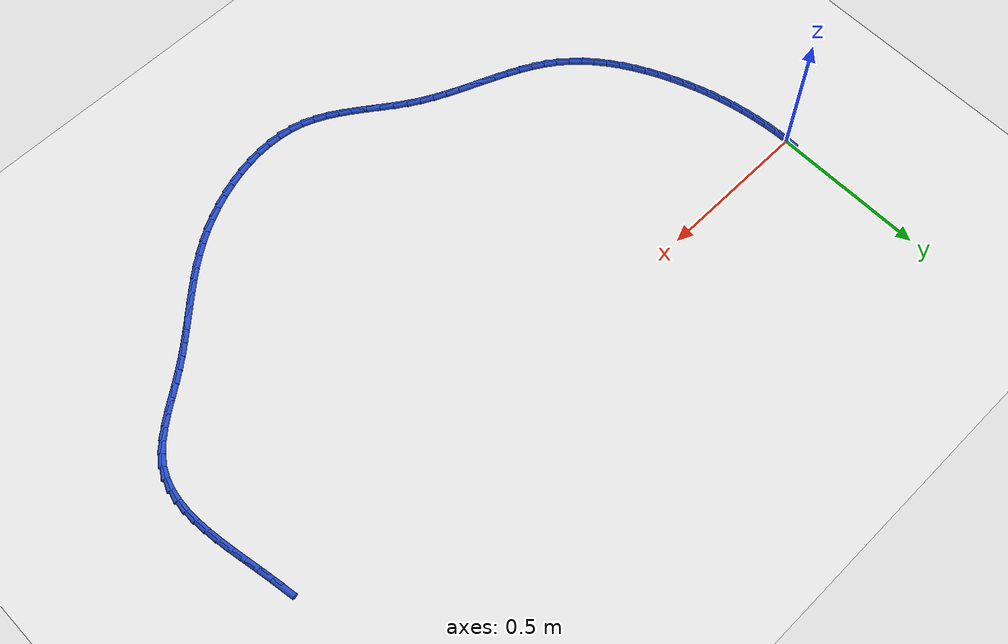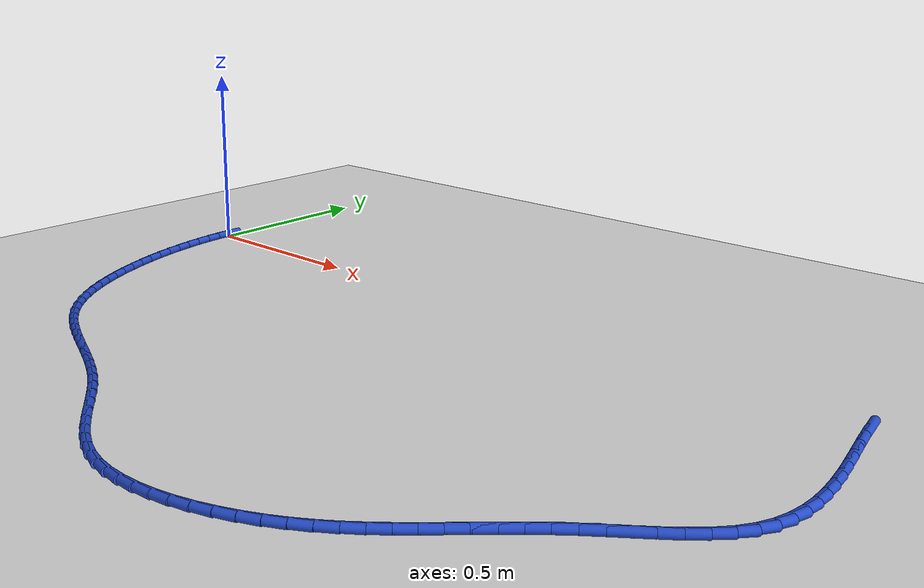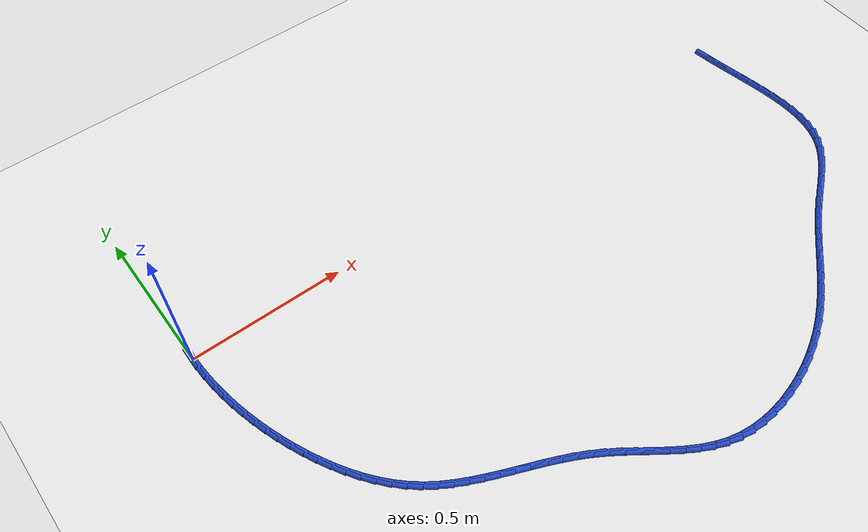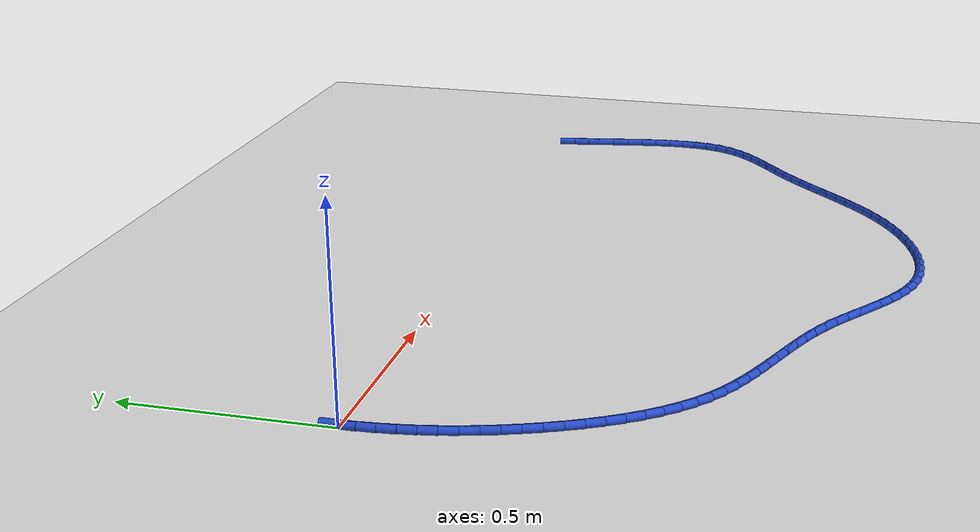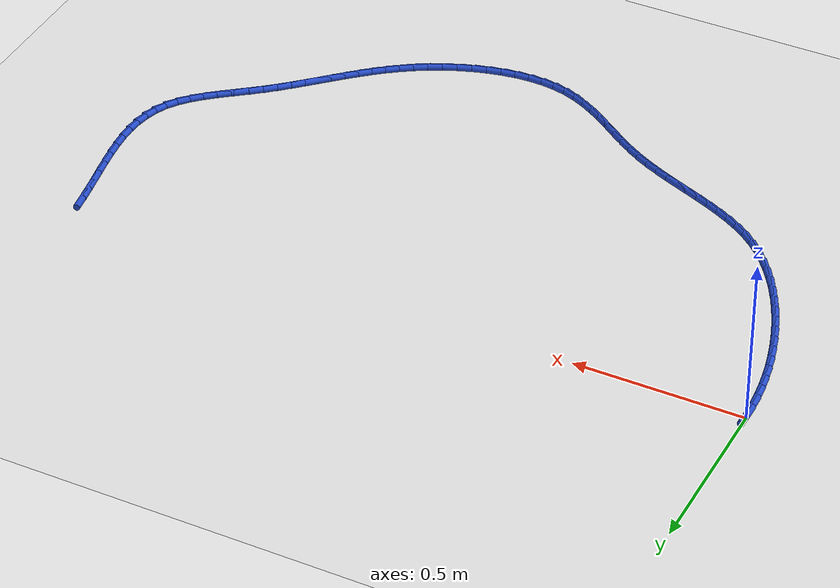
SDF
<sdf version="1.6">
 <world name="default">
  <model name="ground_plane">
   <static>1</static>
   <link name="link">
    <collision name="collision">
     <geometry><plane><normal>0 0 1</normal><size>100 100</size></plane></geometry>
     <surface><friction><ode><mu>100</mu><mu2>50</mu2></ode></friction></surface>
    </collision>
    <visual name="visual">
     <cast_shadows>0</cast_shadows>
     <geometry><plane><normal>0 0 1</normal><size>100 100</size></plane></geometry>
     <material>
      <script><uri>file://media/materials/scripts/gazebo.material</uri><name>Gazebo/WhiteGlow</name></script>
     </material>
    </visual>
   </link>
  </model>
  <model name="line">
   <link name="link_0">
    <pose>8.673617379884035e-19 -9.71445146547012e-17 0.01 0 1.57 1.564009834167707</pose>
    <collision name="collision">
     <geometry><cylinder><radius>0.01</radius><length>0.08</length></cylinder></geometry>
    </collision>
    <visual name="visual">
     <material>
      <script><name>Gazebo/Blue</name><uri>file://media/materials/scripts/gazebo.material</uri></script>
     </material>
     <geometry><cylinder><radius>0.01</radius><length>0.08</length></cylinder></geometry>
    </visual>
   </link>
   <link name="link_80">
    <pose>2.033537973841397 -0.027237869934333914 0.01 0 1.57 -1.408950799010912</pose>
    <collision name="collision">
     <geometry><cylinder><radius>0.01</radius><length>0.08</length></cylinder></geometry>
    </collision>
    <visual name="visual">
     <material>
      <script><name>Gazebo/Blue</name><uri>file://media/materials/scripts/gazebo.material</uri></script>
     </material>
     <geometry><cylinder><radius>0.01</radius><length>0.08</length></cylinder></geometry>
    </visual>
   </link>
   <link name="link_81">
    <pose>2.040979530329874 -0.07281508294021721 0.01 0 1.57 -1.3906604653842178</pose>
    <collision name="collision">
     <geometry><cylinder><radius>0.01</radius><length>0.08</length></cylinder></geometry>
    </collision>
    <visual name="visual">
     <material>
      <script><name>Gazebo/Blue</name><uri>file://media/materials/scripts/gazebo.material</uri></script>
     </material>
     <geometry><cylinder><radius>0.01</radius><length>0.08</length></cylinder></geometry>
    </visual>
   </link>
   <link name="link_82">
    <pose>2.049267936098644 -0.11832829282908089 0.01 0 1.57 -1.3839317653717993</pose>
    <collision name="collision">
     <geometry><cylinder><radius>0.01</radius><length>0.08</length></cylinder></geometry>
    </collision>
    <visual name="visual">
     <material>
      <script><name>Gazebo/Blue</name><uri>file://media/materials/scripts/gazebo.material</uri></script>
     </material>
     <geometry><cylinder><radius>0.01</radius><length>0.08</length></cylinder></geometry>
    </visual>
   </link>
   <link name="link_83">
    <pose>2.057824631771969 -0.16358496277215478 0.01 0 1.57 -1.3887921575831346</pose>
    <collision name="collision">
     <geometry><cylinder><radius>0.01</radius><length>0.08</length></cylinder></geometry>
    </collision>
    <visual name="visual">
     <material>
      <script><name>Gazebo/Blue</name><uri>file://media/materials/scripts/gazebo.material</uri></script>
     </material>
     <geometry><cylinder><radius>0.01</radius><length>0.08</length></cylinder></geometry>
    </visual>
   </link>
   <link name="link_84">
    <pose>2.0660710579741095 -0.2083925559406713 0.01 0 1.57 -1.405722535275792</pose>
    <collision name="collision">
     <geometry><cylinder><radius>0.01</radius><length>0.08</length></cylinder></geometry>
    </collision>
    <visual name="visual">
     <material>
      <script><name>Gazebo/Blue</name><uri>file://media/materials/scripts/gazebo.material</uri></script>
     </material>
     <geometry><cylinder><radius>0.01</radius><length>0.08</length></cylinder></geometry>
    </visual>
   </link>
   <link name="link_85">
    <pose>2.0734286553293257 -0.2525585355058618 0.01 0 1.57 -1.4356917835470362</pose>
    <collision name="collision">
     <geometry><cylinder><radius>0.01</radius><length>0.08</length></cylinder></geometry>
    </collision>
    <visual name="visual">
     <material>
      <script><name>Gazebo/Blue</name><uri>file://media/materials/scripts/gazebo.material</uri></script>
     </material>
     <geometry><cylinder><radius>0.01</radius><length>0.08</length></cylinder></geometry>
    </visual>
   </link>
   <link name="link_86">
    <pose>2.0793188644618796 -0.295890364638958 0.01 0 1.57 -1.480175367481093</pose>
    <collision name="collision">
     <geometry><cylinder><radius>0.01</radius><length>0.08</length></cylinder></geometry>
    </collision>
    <visual name="visual">
     <material>
      <script><name>Gazebo/Blue</name><uri>file://media/materials/scripts/gazebo.material</uri></script>
     </material>
     <geometry><cylinder><radius>0.01</radius><length>0.08</length></cylinder></geometry>
    </visual>
   </link>
   <link name="link_87">
    <pose>2.0831631259960313 -0.33819550651119173 0.01 0 1.57 -1.541117145630698</pose>
    <collision name="collision">
     <geometry><cylinder><radius>0.01</radius><length>0.08</length></cylinder></geometry>
    </collision>
    <visual name="visual">
     <material>
      <script><name>Gazebo/Blue</name><uri>file://media/materials/scripts/gazebo.material</uri></script>
     </material>
     <geometry><cylinder><radius>0.01</radius><length>0.08</length></cylinder></geometry>
    </visual>
   </link>
   <link name="link_88">
    <pose>2.0843828805560425 -0.3792814242937936 0.01 0 1.57 1.5208478888365247</pose>
    <collision name="collision">
     <geometry><cylinder><radius>0.01</radius><length>0.08</length></cylinder></geometry>
    </collision>
    <visual name="visual">
     <material>
      <script><name>Gazebo/Blue</name><uri>file://media/materials/scripts/gazebo.material</uri></script>
     </material>
     <geometry><cylinder><radius>0.01</radius><length>0.08</length></cylinder></geometry>
    </visual>
   </link>
   <link name="link_89">
    <pose>2.082399568766174 -0.41895558115799536 0.01 0 1.57 1.4205076589526227</pose>
    <collision name="collision">
     <geometry><cylinder><radius>0.01</radius><length>0.08</length></cylinder></geometry>
    </collision>
    <visual name="visual">
     <material>
      <script><name>Gazebo/Blue</name><uri>file://media/materials/scripts/gazebo.material</uri></script>
     </material>
     <geometry><cylinder><radius>0.01</radius><length>0.08</length></cylinder></geometry>
    </visual>
   </link>
   <link name="link_90">
    <pose>2.0766346312506867 -0.4570254402750286 0.01 0 1.57 1.2985885902829757</pose>
    <collision name="collision">
     <geometry><cylinder><radius>0.01</radius><length>0.08</length></cylinder></geometry>
    </collision>
    <visual name="visual">
     <material>
      <script><name>Gazebo/Blue</name><uri>file://media/materials/scripts/gazebo.material</uri></script>
     </material>
     <geometry><cylinder><radius>0.01</radius><length>0.08</length></cylinder></geometry>
    </visual>
   </link>
   <link name="link_91">
    <pose>2.066509508633841 -0.49329846481612505 0.01 0 1.57 1.1568012924969873</pose>
    <collision name="collision">
     <geometry><cylinder><radius>0.01</radius><length>0.08</length></cylinder></geometry>
    </collision>
    <visual name="visual">
     <material>
      <script><name>Gazebo/Blue</name><uri>file://media/materials/scripts/gazebo.material</uri></script>
     </material>
     <geometry><cylinder><radius>0.01</radius><length>0.08</length></cylinder></geometry>
    </visual>
   </link>
   <link name="link_92">
    <pose>2.0514456415398983 -0.5275821179525164 0.01 0 1.57 1.00234281631323</pose>
    <collision name="collision">
     <geometry><cylinder><radius>0.01</radius><length>0.08</length></cylinder></geometry>
    </collision>
    <visual name="visual">
     <material>
      <script><name>Gazebo/Blue</name><uri>file://media/materials/scripts/gazebo.material</uri></script>
     </material>
     <geometry><cylinder><radius>0.01</radius><length>0.08</length></cylinder></geometry>
    </visual>
   </link>
   <link name="link_93">
    <pose>2.0309245384908117 -0.5597071350365312 0.01 0 1.57 0.8670301735378677</pose>
    <collision name="collision">
     <geometry><cylinder><radius>0.01</radius><length>0.08</length></cylinder></geometry>
    </collision>
    <visual name="visual">
     <material>
      <script><name>Gazebo/Blue</name><uri>file://media/materials/scripts/gazebo.material</uri></script>
     </material>
     <geometry><cylinder><radius>0.01</radius><length>0.08</length></cylinder></geometry>
    </visual>
   </link>
   <link name="link_94">
    <pose>2.0053357382939656 -0.58985605073523 0.01 0 1.57 0.769328494951824</pose>
    <collision name="collision">
     <geometry><cylinder><radius>0.01</radius><length>0.08</length></cylinder></geometry>
    </collision>
    <visual name="visual">
     <material>
      <script><name>Gazebo/Blue</name><uri>file://media/materials/scripts/gazebo.material</uri></script>
     </material>
     <geometry><cylinder><radius>0.01</radius><length>0.08</length></cylinder></geometry>
    </visual>
   </link>
   <link name="link_95">
    <pose>1.975772537611894 -0.6184840575060004 0.01 0 1.57 0.7046260959482025</pose>
    <collision name="collision">
     <geometry><cylinder><radius>0.01</radius><length>0.08</length></cylinder></geometry>
    </collision>
    <visual name="visual">
     <material>
      <script><name>Gazebo/Blue</name><uri>file://media/materials/scripts/gazebo.material</uri></script>
     </material>
     <geometry><cylinder><radius>0.01</radius><length>0.08</length></cylinder></geometry>
    </visual>
   </link>
   <link name="link_96">
    <pose>1.943346612964454 -0.6460534687374547 0.01 0 1.57 0.6681327440500509</pose>
    <collision name="collision">
     <geometry><cylinder><radius>0.01</radius><length>0.08</length></cylinder></geometry>
    </collision>
    <visual name="visual">
     <material>
      <script><name>Gazebo/Blue</name><uri>file://media/materials/scripts/gazebo.material</uri></script>
     </material>
     <geometry><cylinder><radius>0.01</radius><length>0.08</length></cylinder></geometry>
    </visual>
   </link>
   <link name="link_97">
    <pose>1.9091696408715064 -0.6730265978182043 0.01 0 1.57 0.6567298141602755</pose>
    <collision name="collision">
     <geometry><cylinder><radius>0.01</radius><length>0.08</length></cylinder></geometry>
    </collision>
    <visual name="visual">
     <material>
      <script><name>Gazebo/Blue</name><uri>file://media/materials/scripts/gazebo.material</uri></script>
     </material>
     <geometry><cylinder><radius>0.01</radius><length>0.08</length></cylinder></geometry>
    </visual>
   </link>
   <link name="link_98">
    <pose>1.8743532978529092 -0.6998657581368608 0.01 0 1.57 0.6692535553948593</pose>
    <collision name="collision">
     <geometry><cylinder><radius>0.01</radius><length>0.08</length></cylinder></geometry>
    </collision>
    <visual name="visual">
     <material>
      <script><name>Gazebo/Blue</name><uri>file://media/materials/scripts/gazebo.material</uri></script>
     </material>
     <geometry><cylinder><radius>0.01</radius><length>0.08</length></cylinder></geometry>
    </visual>
   </link>
   <link name="link_99">
    <pose>1.8400092604285208 -0.7270332630820366 0.01 0 1.57 0.7017324231551274</pose>
    <collision name="collision">
     <geometry><cylinder><radius>0.01</radius><length>0.08</length></cylinder></geometry>
    </collision>
    <visual name="visual">
     <material>
      <script><name>Gazebo/Blue</name><uri>file://media/materials/scripts/gazebo.material</uri></script>
     </material>
     <geometry><cylinder><radius>0.01</radius><length>0.08</length></cylinder></geometry>
    </visual>
   </link>
   <link name="link_100">
    <pose>1.807046163748196 -0.7548954590430957 0.01 0 1.57 0.7325263499050095</pose>
    <collision name="collision">
     <geometry><cylinder><radius>0.01</radius><length>0.08</length></cylinder></geometry>
    </collision>
    <visual name="visual">
     <material>
      <script><name>Gazebo/Blue</name><uri>file://media/materials/scripts/gazebo.material</uri></script>
     </material>
     <geometry><cylinder><radius>0.01</radius><length>0.08</length></cylinder></geometry>
    </visual>
   </link>
   <link name="link_101">
    <pose>1.7754010902827617 -0.7833594904486628 0.01 0 1.57 0.7544180452964225</pose>
    <collision name="collision">
     <geometry><cylinder><radius>0.01</radius><length>0.08</length></cylinder></geometry>
    </collision>
    <visual name="visual">
     <material>
      <script><name>Gazebo/Blue</name><uri>file://media/materials/scripts/gazebo.material</uri></script>
     </material>
     <geometry><cylinder><radius>0.01</radius><length>0.08</length></cylinder></geometry>
    </visual>
   </link>
   <link name="link_102">
    <pose>1.7447208644646846 -0.812195311986429 0.01 0 1.57 0.7669221166654493</pose>
    <collision name="collision">
     <geometry><cylinder><radius>0.01</radius><length>0.08</length></cylinder></geometry>
    </collision>
    <visual name="visual">
     <material>
      <script><name>Gazebo/Blue</name><uri>file://media/materials/scripts/gazebo.material</uri></script>
     </material>
     <geometry><cylinder><radius>0.01</radius><length>0.08</length></cylinder></geometry>
    </visual>
   </link>
   <link name="link_103">
    <pose>1.7146522590166073 -0.8411728539035693 0.01 0 1.57 0.769709005347059</pose>
    <collision name="collision">
     <geometry><cylinder><radius>0.01</radius><length>0.08</length></cylinder></geometry>
    </collision>
    <visual name="visual">
     <material>
      <script><name>Gazebo/Blue</name><uri>file://media/materials/scripts/gazebo.material</uri></script>
     </material>
     <geometry><cylinder><radius>0.01</radius><length>0.08</length></cylinder></geometry>
    </visual>
   </link>
   <link name="link_104">
    <pose>1.684842046661175 -0.8700620464472579 0.01 0 1.57 0.7625846032331552</pose>
    <collision name="collision">
     <geometry><cylinder><radius>0.01</radius><length>0.08</length></cylinder></geometry>
    </collision>
    <visual name="visual">
     <material>
      <script><name>Gazebo/Blue</name><uri>file://media/materials/scripts/gazebo.material</uri></script>
     </material>
     <geometry><cylinder><radius>0.01</radius><length>0.08</length></cylinder></geometry>
    </visual>
   </link>
   <link name="link_105">
    <pose>1.6549370001210322 -0.8986328198646693 0.01 0 1.57 0.7454911769114966</pose>
    <collision name="collision">
     <geometry><cylinder><radius>0.01</radius><length>0.08</length></cylinder></geometry>
    </collision>
    <visual name="visual">
     <material>
      <script><name>Gazebo/Blue</name><uri>file://media/materials/scripts/gazebo.material</uri></script>
     </material>
     <geometry><cylinder><radius>0.01</radius><length>0.08</length></cylinder></geometry>
    </visual>
   </link>
   <link name="link_106">
    <pose>1.6245838921188211 -0.9266551044029778 0.01 0 1.57 0.7185323009290064</pose>
    <collision name="collision">
     <geometry><cylinder><radius>0.01</radius><length>0.08</length></cylinder></geometry>
    </collision>
    <visual name="visual">
     <material>
      <script><name>Gazebo/Blue</name><uri>file://media/materials/scripts/gazebo.material</uri></script>
     </material>
     <geometry><cylinder><radius>0.01</radius><length>0.08</length></cylinder></geometry>
    </visual>
   </link>
   <link name="link_107">
    <pose>1.5934294953771886 -0.9538988303093571 0.01 0 1.57 0.6820201611215025</pose>
    <collision name="collision">
     <geometry><cylinder><radius>0.01</radius><length>0.08</length></cylinder></geometry>
    </collision>
    <visual name="visual">
     <material>
      <script><name>Gazebo/Blue</name><uri>file://media/materials/scripts/gazebo.material</uri></script>
     </material>
     <geometry><cylinder><radius>0.01</radius><length>0.08</length></cylinder></geometry>
    </visual>
   </link>
   <link name="link_108">
    <pose>1.5611205826187764 -0.9801339278309811 0.01 0 1.57 0.6365365123877902</pose>
    <collision name="collision">
     <geometry><cylinder><radius>0.01</radius><length>0.08</length></cylinder></geometry>
    </collision>
    <visual name="visual">
     <material>
      <script><name>Gazebo/Blue</name><uri>file://media/materials/scripts/gazebo.material</uri></script>
     </material>
     <geometry><cylinder><radius>0.01</radius><length>0.08</length></cylinder></geometry>
    </visual>
   </link>
   <link name="link_109">
    <pose>1.5273039265662303 -1.0051303272150252 0.01 0 1.57 0.583013657812503</pose>
    <collision name="collision">
     <geometry><cylinder><radius>0.01</radius><length>0.08</length></cylinder></geometry>
    </collision>
    <visual name="visual">
     <material>
      <script><name>Gazebo/Blue</name><uri>file://media/materials/scripts/gazebo.material</uri></script>
     </material>
     <geometry><cylinder><radius>0.01</radius><length>0.08</length></cylinder></geometry>
    </visual>
   </link>
   <link name="link_110">
    <pose>1.4916282509925067 -1.0286578730292228 0.01 0 1.57 0.5250424568724794</pose>
    <collision name="collision">
     <geometry><cylinder><radius>0.01</radius><length>0.08</length></cylinder></geometry>
    </collision>
    <visual name="visual">
     <material>
      <script><name>Gazebo/Blue</name><uri>file://media/materials/scripts/gazebo.material</uri></script>
     </material>
     <geometry><cylinder><radius>0.01</radius><length>0.08</length></cylinder></geometry>
    </visual>
   </link>
   <link name="link_111">
    <pose>1.453962554514514 -1.0504767365770906 0.01 0 1.57 0.46706284884466287</pose>
    <collision name="collision">
     <geometry><cylinder><radius>0.01</radius><length>0.08</length></cylinder></geometry>
    </collision>
    <visual name="visual">
     <material>
      <script><name>Gazebo/Blue</name><uri>file://media/materials/scripts/gazebo.material</uri></script>
     </material>
     <geometry><cylinder><radius>0.01</radius><length>0.08</length></cylinder></geometry>
    </visual>
   </link>
   <link name="link_112">
    <pose>1.4145953958907684 -1.0703286643795706 0.01 0 1.57 0.4083643075210973</pose>
    <collision name="collision">
     <geometry><cylinder><radius>0.01</radius><length>0.08</length></cylinder></geometry>
    </collision>
    <visual name="visual">
     <material>
      <script><name>Gazebo/Blue</name><uri>file://media/materials/scripts/gazebo.material</uri></script>
     </material>
     <geometry><cylinder><radius>0.01</radius><length>0.08</length></cylinder></geometry>
    </visual>
   </link>
   <link name="link_113">
    <pose>1.3738624073746093 -1.087953335747639 0.01 0 1.57 0.3477233747365252</pose>
    <collision name="collision">
     <geometry><cylinder><radius>0.01</radius><length>0.08</length></cylinder></geometry>
    </collision>
    <visual name="visual">
     <material>
      <script><name>Gazebo/Blue</name><uri>file://media/materials/scripts/gazebo.material</uri></script>
     </material>
     <geometry><cylinder><radius>0.01</radius><length>0.08</length></cylinder></geometry>
    </visual>
   </link>
   <link name="link_114">
    <pose>1.332099221219375 -1.103090429992271 0.01 0 1.57 0.2839175172753378</pose>
    <collision name="collision">
     <geometry><cylinder><radius>0.01</radius><length>0.08</length></cylinder></geometry>
    </collision>
    <visual name="visual">
     <material>
      <script><name>Gazebo/Blue</name><uri>file://media/materials/scripts/gazebo.material</uri></script>
     </material>
     <geometry><cylinder><radius>0.01</radius><length>0.08</length></cylinder></geometry>
    </visual>
   </link>
   <link name="link_115">
    <pose>1.289641469678404 -1.1154796264244422 0.01 0 1.57 0.21568817803843005</pose>
    <collision name="collision">
     <geometry><cylinder><radius>0.01</radius><length>0.08</length></cylinder></geometry>
    </collision>
    <visual name="visual">
     <material>
      <script><name>Gazebo/Blue</name><uri>file://media/materials/scripts/gazebo.material</uri></script>
     </material>
     <geometry><cylinder><radius>0.01</radius><length>0.08</length></cylinder></geometry>
    </visual>
   </link>
   <link name="link_116">
    <pose>1.2468247850050347 -1.1248606043551284 0.01 0 1.57 0.14172412749403454</pose>
    <collision name="collision">
     <geometry><cylinder><radius>0.01</radius><length>0.08</length></cylinder></geometry>
    </collision>
    <visual name="visual">
     <material>
      <script><name>Gazebo/Blue</name><uri>file://media/materials/scripts/gazebo.material</uri></script>
     </material>
     <geometry><cylinder><radius>0.01</radius><length>0.08</length></cylinder></geometry>
    </visual>
   </link>
   <link name="link_117">
    <pose>1.2039847994526074 -1.1309730430953049 0.01 0 1.57 0.060675990362475826</pose>
    <collision name="collision">
     <geometry><cylinder><radius>0.01</radius><length>0.08</length></cylinder></geometry>
    </collision>
    <visual name="visual">
     <material>
      <script><name>Gazebo/Blue</name><uri>file://media/materials/scripts/gazebo.material</uri></script>
     </material>
     <geometry><cylinder><radius>0.01</radius><length>0.08</length></cylinder></geometry>
    </visual>
   </link>
   <link name="link_118">
    <pose>1.1614571452744593 -1.1335566219559463 0.01 0 1.57 -0.028779315881941932</pose>
    <collision name="collision">
     <geometry><cylinder><radius>0.01</radius><length>0.08</length></cylinder></geometry>
    </collision>
    <visual name="visual">
     <material>
      <script><name>Gazebo/Blue</name><uri>file://media/materials/scripts/gazebo.material</uri></script>
     </material>
     <geometry><cylinder><radius>0.01</radius><length>0.08</length></cylinder></geometry>
    </visual>
   </link>
   <link name="link_119">
    <pose>1.1195774547239299 -1.1323510202480291 0.01 0 1.57 -0.1277985636351071</pose>
    <collision name="collision">
     <geometry><cylinder><radius>0.01</radius><length>0.08</length></cylinder></geometry>
    </collision>
    <visual name="visual">
     <material>
      <script><name>Gazebo/Blue</name><uri>file://media/materials/scripts/gazebo.material</uri></script>
     </material>
     <geometry><cylinder><radius>0.01</radius><length>0.08</length></cylinder></geometry>
    </visual>
   </link>
   <link name="link_120">
    <pose>1.0786813600543572 -1.1270959172825283 0.01 0 1.57 -0.23713258522334393</pose>
    <collision name="collision">
     <geometry><cylinder><radius>0.01</radius><length>0.08</length></cylinder></geometry>
    </collision>
    <visual name="visual">
     <material>
      <script><name>Gazebo/Blue</name><uri>file://media/materials/scripts/gazebo.material</uri></script>
     </material>
     <geometry><cylinder><radius>0.01</radius><length>0.08</length></cylinder></geometry>
    </visual>
   </link>
   <link name="link_121">
    <pose>1.0391044935190799 -1.1175309923704193 0.01 0 1.57 -0.35228153935765794</pose>
    <collision name="collision">
     <geometry><cylinder><radius>0.01</radius><length>0.08</length></cylinder></geometry>
    </collision>
    <visual name="visual">
     <material>
      <script><name>Gazebo/Blue</name><uri>file://media/materials/scripts/gazebo.material</uri></script>
     </material>
     <geometry><cylinder><radius>0.01</radius><length>0.08</length></cylinder></geometry>
    </visual>
   </link>
   <link name="link_122">
    <pose>1.0010824939307736 -1.1035534893908558 0.01 0 1.57 -0.4517857232652697</pose>
    <collision name="collision">
     <geometry><cylinder><radius>0.01</radius><length>0.08</length></cylinder></geometry>
    </collision>
    <visual name="visual">
     <material>
      <script><name>Gazebo/Blue</name><uri>file://media/materials/scripts/gazebo.material</uri></script>
     </material>
     <geometry><cylinder><radius>0.01</radius><length>0.08</length></cylinder></geometry>
    </visual>
   </link>
   <link name="link_123">
    <pose>0.9644089033947068 -1.0857572856854758 0.01 0 1.57 -0.5287130038010821</pose>
    <collision name="collision">
     <geometry><cylinder><radius>0.01</radius><length>0.08</length></cylinder></geometry>
    </collision>
    <visual name="visual">
     <material>
      <script><name>Gazebo/Blue</name><uri>file://media/materials/scripts/gazebo.material</uri></script>
     </material>
     <geometry><cylinder><radius>0.01</radius><length>0.08</length></cylinder></geometry>
    </visual>
   </link>
   <link name="link_124">
    <pose>0.9287551231968904 -1.0649287218746608 0.01 0 1.57 -0.5833586391537093</pose>
    <collision name="collision">
     <geometry><cylinder><radius>0.01</radius><length>0.08</length></cylinder></geometry>
    </collision>
    <visual name="visual">
     <material>
      <script><name>Gazebo/Blue</name><uri>file://media/materials/scripts/gazebo.material</uri></script>
     </material>
     <geometry><cylinder><radius>0.01</radius><length>0.08</length></cylinder></geometry>
    </visual>
   </link>
   <link name="link_125">
    <pose>0.8937925505151001 -1.0418541450523433 0.01 0 1.57 -0.6167958385666008</pose>
    <collision name="collision">
     <geometry><cylinder><radius>0.01</radius><length>0.08</length></cylinder></geometry>
    </collision>
    <visual name="visual">
     <material>
      <script><name>Gazebo/Blue</name><uri>file://media/materials/scripts/gazebo.material</uri></script>
     </material>
     <geometry><cylinder><radius>0.01</radius><length>0.08</length></cylinder></geometry>
    </visual>
   </link>
   <link name="link_126">
    <pose>0.8591925825271096 -1.0173199023124542 0.01 0 1.57 -0.6300945607982837</pose>
    <collision name="collision">
     <geometry><cylinder><radius>0.01</radius><length>0.08</length></cylinder></geometry>
    </collision>
    <visual name="visual">
     <material>
      <script><name>Gazebo/Blue</name><uri>file://media/materials/scripts/gazebo.material</uri></script>
     </material>
     <geometry><cylinder><radius>0.01</radius><length>0.08</length></cylinder></geometry>
    </visual>
   </link>
   <link name="link_127">
    <pose>0.8246266164106962 -0.9921123407489264 0.01 0 1.57 -0.623927169237945</pose>
    <collision name="collision">
     <geometry><cylinder><radius>0.01</radius><length>0.08</length></cylinder></geometry>
    </collision>
    <visual name="visual">
     <material>
      <script><name>Gazebo/Blue</name><uri>file://media/materials/scripts/gazebo.material</uri></script>
     </material>
     <geometry><cylinder><radius>0.01</radius><length>0.08</length></cylinder></geometry>
    </visual>
   </link>
   <link name="link_128">
    <pose>0.7897660493436344 -0.9670178074556915 0.01 0 1.57 -0.5984511711953533</pose>
    <collision name="collision">
     <geometry><cylinder><radius>0.01</radius><length>0.08</length></cylinder></geometry>
    </collision>
    <visual name="visual">
     <material>
      <script><name>Gazebo/Blue</name><uri>file://media/materials/scripts/gazebo.material</uri></script>
     </material>
     <geometry><cylinder><radius>0.01</radius><length>0.08</length></cylinder></geometry>
    </visual>
   </link>
   <link name="link_129">
    <pose>0.7542822785036987 -0.9428226495266808 0.01 0 1.57 -0.5534995325490872</pose>
    <collision name="collision">
     <geometry><cylinder><radius>0.01</radius><length>0.08</length></cylinder></geometry>
    </collision>
    <visual name="visual">
     <material>
      <script><name>Gazebo/Blue</name><uri>file://media/materials/scripts/gazebo.material</uri></script>
     </material>
     <geometry><cylinder><radius>0.01</radius><length>0.08</length></cylinder></geometry>
    </visual>
   </link>
   <link name="link_130">
    <pose>0.7178486741466868 -0.920309211034003 0.01 0 1.57 -0.49915868295905946</pose>
    <collision name="collision">
     <geometry><cylinder><radius>0.01</radius><length>0.08</length></cylinder></geometry>
    </collision>
    <visual name="visual">
     <material>
      <script><name>Gazebo/Blue</name><uri>file://media/materials/scripts/gazebo.material</uri></script>
     </material>
     <geometry><cylinder><radius>0.01</radius><length>0.08</length></cylinder></geometry>
    </visual>
   </link>
   <link name="link_131">
    <pose>0.6803369541812593 -0.899857424196729 0.01 0 1.57 -0.4547367164720746</pose>
    <collision name="collision">
     <geometry><cylinder><radius>0.01</radius><length>0.08</length></cylinder></geometry>
    </collision>
    <visual name="visual">
     <material>
      <script><name>Gazebo/Blue</name><uri>file://media/materials/scripts/gazebo.material</uri></script>
     </material>
     <geometry><cylinder><radius>0.01</radius><length>0.08</length></cylinder></geometry>
    </visual>
   </link>
   <link name="link_132">
    <pose>0.6419840427902613 -0.8811062831314989 0.01 0 1.57 -0.4223875069996889</pose>
    <collision name="collision">
     <geometry><cylinder><radius>0.01</radius><length>0.08</length></cylinder></geometry>
    </collision>
    <visual name="visual">
     <material>
      <script><name>Gazebo/Blue</name><uri>file://media/materials/scripts/gazebo.material</uri></script>
     </material>
     <geometry><cylinder><radius>0.01</radius><length>0.08</length></cylinder></geometry>
    </visual>
   </link>
   <link name="link_133">
    <pose>0.6030661594339686 -0.863615058876918 0.01 0 1.57 -0.40206973398045903</pose>
    <collision name="collision">
     <geometry><cylinder><radius>0.01</radius><length>0.08</length></cylinder></geometry>
    </collision>
    <visual name="visual">
     <material>
      <script><name>Gazebo/Blue</name><uri>file://media/materials/scripts/gazebo.material</uri></script>
     </material>
     <geometry><cylinder><radius>0.01</radius><length>0.08</length></cylinder></geometry>
    </visual>
   </link>
   <link name="link_134">
    <pose>0.563859523572657 -0.8469430224715919 0.01 0 1.57 -0.3937534158794066</pose>
    <collision name="collision">
     <geometry><cylinder><radius>0.01</radius><length>0.08</length></cylinder></geometry>
    </collision>
    <visual name="visual">
     <material>
      <script><name>Gazebo/Blue</name><uri>file://media/materials/scripts/gazebo.material</uri></script>
     </material>
     <geometry><cylinder><radius>0.01</radius><length>0.08</length></cylinder></geometry>
    </visual>
   </link>
   <link name="link_135">
    <pose>0.5246403546666031 -0.8306494449541268 0.01 0 1.57 -0.3975089503368088</pose>
    <collision name="collision">
     <geometry><cylinder><radius>0.01</radius><length>0.08</length></cylinder></geometry>
    </collision>
    <visual name="visual">
     <material>
      <script><name>Gazebo/Blue</name><uri>file://media/materials/scripts/gazebo.material</uri></script>
     </material>
     <geometry><cylinder><radius>0.01</radius><length>0.08</length></cylinder></geometry>
    </visual>
   </link>
   <link name="link_136">
    <pose>0.48568487217608186 -0.8142935973631275 0.01 0 1.57 -0.4135467231527009</pose>
    <collision name="collision">
     <geometry><cylinder><radius>0.01</radius><length>0.08</length></cylinder></geometry>
    </collision>
    <visual name="visual">
     <material>
      <script><name>Gazebo/Blue</name><uri>file://media/materials/scripts/gazebo.material</uri></script>
     </material>
     <geometry><cylinder><radius>0.01</radius><length>0.08</length></cylinder></geometry>
    </visual>
   </link>
   <link name="link_137">
    <pose>0.44726929556137146 -0.7974347507372008 0.01 0 1.57 -0.44220712767174636</pose>
    <collision name="collision">
     <geometry><cylinder><radius>0.01</radius><length>0.08</length></cylinder></geometry>
    </collision>
    <visual name="visual">
     <material>
      <script><name>Gazebo/Blue</name><uri>file://media/materials/scripts/gazebo.material</uri></script>
     </material>
     <geometry><cylinder><radius>0.01</radius><length>0.08</length></cylinder></geometry>
    </visual>
   </link>
   <link name="link_138">
    <pose>0.40966984428274705 -0.779632176114952 0.01 0 1.57 -0.4838935567903404</pose>
    <collision name="collision">
     <geometry><cylinder><radius>0.01</radius><length>0.08</length></cylinder></geometry>
    </collision>
    <visual name="visual">
     <material>
      <script><name>Gazebo/Blue</name><uri>file://media/materials/scripts/gazebo.material</uri></script>
     </material>
     <geometry><cylinder><radius>0.01</radius><length>0.08</length></cylinder></geometry>
    </visual>
   </link>
   <link name="link_139">
    <pose>0.3731627378004848 -0.7604451445349867 0.01 0 1.57 -0.5389343921319946</pose>
    <collision name="collision">
     <geometry><cylinder><radius>0.01</radius><length>0.08</length></cylinder></geometry>
    </collision>
    <visual name="visual">
     <material>
      <script><name>Gazebo/Blue</name><uri>file://media/materials/scripts/gazebo.material</uri></script>
     </material>
     <geometry><cylinder><radius>0.01</radius><length>0.08</length></cylinder></geometry>
    </visual>
   </link>
   <link name="link_140">
    <pose>0.3380241955748611 -0.7394329270359107 0.01 0 1.57 -0.6073617716766558</pose>
    <collision name="collision">
     <geometry><cylinder><radius>0.01</radius><length>0.08</length></cylinder></geometry>
    </collision>
    <visual name="visual">
     <material>
      <script><name>Gazebo/Blue</name><uri>file://media/materials/scripts/gazebo.material</uri></script>
     </material>
     <geometry><cylinder><radius>0.01</radius><length>0.08</length></cylinder></geometry>
    </visual>
   </link>
   <link name="link_141">
    <pose>0.30453043706615124 -0.7161547946563293 0.01 0 1.57 -0.6877973295561265</pose>
    <collision name="collision">
     <geometry><cylinder><radius>0.01</radius><length>0.08</length></cylinder></geometry>
    </collision>
    <visual name="visual">
     <material>
      <script><name>Gazebo/Blue</name><uri>file://media/materials/scripts/gazebo.material</uri></script>
     </material>
     <geometry><cylinder><radius>0.01</radius><length>0.08</length></cylinder></geometry>
    </visual>
   </link>
   <link name="link_142">
    <pose>0.27294324756621025 -0.6902015046690144 0.01 0 1.57 -0.7686990962216781</pose>
    <collision name="collision">
     <geometry><cylinder><radius>0.01</radius><length>0.08</length></cylinder></geometry>
    </collision>
    <visual name="visual">
     <material>
      <script><name>Gazebo/Blue</name><uri>file://media/materials/scripts/gazebo.material</uri></script>
     </material>
     <geometry><cylinder><radius>0.01</radius><length>0.08</length></cylinder></geometry>
    </visual>
   </link>
   <link name="link_143">
    <pose>0.2433385026002771 -0.6615693519761932 0.01 0 1.57 -0.8425242414072035</pose>
    <collision name="collision">
     <geometry><cylinder><radius>0.01</radius><length>0.08</length></cylinder></geometry>
    </collision>
    <visual name="visual">
     <material>
      <script><name>Gazebo/Blue</name><uri>file://media/materials/scripts/gazebo.material</uri></script>
     </material>
     <geometry><cylinder><radius>0.01</radius><length>0.08</length></cylinder></geometry>
    </visual>
   </link>
   <link name="link_144">
    <pose>0.21566293461574212 -0.6305363400670347 0.01 0 1.57 -0.9094000931263464</pose>
    <collision name="collision">
     <geometry><cylinder><radius>0.01</radius><length>0.08</length></cylinder></geometry>
    </collision>
    <visual name="visual">
     <material>
      <script><name>Gazebo/Blue</name><uri>file://media/materials/scripts/gazebo.material</uri></script>
     </material>
     <geometry><cylinder><radius>0.01</radius><length>0.08</length></cylinder></geometry>
    </visual>
   </link>
   <link name="link_145">
    <pose>0.18986066979156402 -0.5973861576614571 0.01 0 1.57 -0.9697996242111169</pose>
    <collision name="collision">
     <geometry><cylinder><radius>0.01</radius><length>0.08</length></cylinder></geometry>
    </collision>
    <visual name="visual">
     <material>
      <script><name>Gazebo/Blue</name><uri>file://media/materials/scripts/gazebo.material</uri></script>
     </material>
     <geometry><cylinder><radius>0.01</radius><length>0.08</length></cylinder></geometry>
    </visual>
   </link>
   <link name="link_146">
    <pose>0.1658758343067008 -0.5624024934793772 0.01 0 1.57 -1.024296667267705</pose>
    <collision name="collision">
     <geometry><cylinder><radius>0.01</radius><length>0.08</length></cylinder></geometry>
    </collision>
    <visual name="visual">
     <material>
      <script><name>Gazebo/Blue</name><uri>file://media/materials/scripts/gazebo.material</uri></script>
     </material>
     <geometry><cylinder><radius>0.01</radius><length>0.08</length></cylinder></geometry>
    </visual>
   </link>
   <link name="link_147">
    <pose>0.14365255434011195 -0.5258690362407145 0.01 0 1.57 -1.073497824403388</pose>
    <collision name="collision">
     <geometry><cylinder><radius>0.01</radius><length>0.08</length></cylinder></geometry>
    </collision>
    <visual name="visual">
     <material>
      <script><name>Gazebo/Blue</name><uri>file://media/materials/scripts/gazebo.material</uri></script>
     </material>
     <geometry><cylinder><radius>0.01</radius><length>0.08</length></cylinder></geometry>
    </visual>
   </link>
   <link name="link_148">
    <pose>0.12313495607075549 -0.48806947466538625 0.01 0 1.57 -1.1179994531075106</pose>
    <collision name="collision">
     <geometry><cylinder><radius>0.01</radius><length>0.08</length></cylinder></geometry>
    </collision>
    <visual name="visual">
     <material>
      <script><name>Gazebo/Blue</name><uri>file://media/materials/scripts/gazebo.material</uri></script>
     </material>
     <geometry><cylinder><radius>0.01</radius><length>0.08</length></cylinder></geometry>
    </visual>
   </link>
   <link name="link_149">
    <pose>0.10426716567759003 -0.44928749747331037 0.01 0 1.57 -1.1583635989872612</pose>
    <collision name="collision">
     <geometry><cylinder><radius>0.01</radius><length>0.08</length></cylinder></geometry>
    </collision>
    <visual name="visual">
     <material>
      <script><name>Gazebo/Blue</name><uri>file://media/materials/scripts/gazebo.material</uri></script>
     </material>
     <geometry><cylinder><radius>0.01</radius><length>0.08</length></cylinder></geometry>
    </visual>
   </link>
   <link name="link_150">
    <pose>0.08699330933957408 -0.4098067933844046 0.01 0 1.57 -1.1951294740102556</pose>
    <collision name="collision">
     <geometry><cylinder><radius>0.01</radius><length>0.08</length></cylinder></geometry>
    </collision>
    <visual name="visual">
     <material>
      <script><name>Gazebo/Blue</name><uri>file://media/materials/scripts/gazebo.material</uri></script>
     </material>
     <geometry><cylinder><radius>0.01</radius><length>0.08</length></cylinder></geometry>
    </visual>
   </link>
   <link name="link_151">
    <pose>0.07125793092016844 -0.3699094811937563 0.01 0 1.57 -1.2301994717198097</pose>
    <collision name="collision">
     <geometry><cylinder><radius>0.01</radius><length>0.08</length></cylinder></geometry>
    </collision>
    <visual name="visual">
     <material>
      <script><name>Gazebo/Blue</name><uri>file://media/materials/scripts/gazebo.material</uri></script>
     </material>
     <geometry><cylinder><radius>0.01</radius><length>0.08</length></cylinder></geometry>
    </visual>
   </link>
   <link name="link_152">
    <pose>0.05703333626640145 -0.32977333245095974 0.01 0 1.57 -1.2660447109398316</pose>
    <collision name="collision">
     <geometry><cylinder><radius>0.01</radius><length>0.08</length></cylinder></geometry>
    </collision>
    <visual name="visual">
     <material>
      <script><name>Gazebo/Blue</name><uri>file://media/materials/scripts/gazebo.material</uri></script>
     </material>
     <geometry><cylinder><radius>0.01</radius><length>0.08</length></cylinder></geometry>
    </visual>
   </link>
   <link name="link_153">
    <pose>0.044336491657982126 -0.28940825630767136 0.01 0 1.57 -1.302812822911753</pose>
    <collision name="collision">
     <geometry><cylinder><radius>0.01</radius><length>0.08</length></cylinder></geometry>
    </collision>
    <visual name="visual">
     <material>
      <script><name>Gazebo/Blue</name><uri>file://media/materials/scripts/gazebo.material</uri></script>
     </material>
     <geometry><cylinder><radius>0.01</radius><length>0.08</length></cylinder></geometry>
    </visual>
   </link>
   <link name="link_154">
    <pose>0.03318840208694879 -0.248808981858047 0.01 0 1.57 -1.340420090916461</pose>
    <collision name="collision">
     <geometry><cylinder><radius>0.01</radius><length>0.08</length></cylinder></geometry>
    </collision>
    <visual name="visual">
     <material>
      <script><name>Gazebo/Blue</name><uri>file://media/materials/scripts/gazebo.material</uri></script>
     </material>
     <geometry><cylinder><radius>0.01</radius><length>0.08</length></cylinder></geometry>
    </visual>
   </link>
   <link name="link_155">
    <pose>0.02361007254533977 -0.20797023819624336 0.01 0 1.57 -1.3787691990908273</pose>
    <collision name="collision">
     <geometry><cylinder><radius>0.01</radius><length>0.08</length></cylinder></geometry>
    </collision>
    <visual name="visual">
     <material>
      <script><name>Gazebo/Blue</name><uri>file://media/materials/scripts/gazebo.material</uri></script>
     </material>
     <geometry><cylinder><radius>0.01</radius><length>0.08</length></cylinder></geometry>
    </visual>
   </link>
   <link name="link_156">
    <pose>0.015622508025193226 -0.16688675441641568 0.01 0 1.57 -1.4177500812592179</pose>
    <collision name="collision">
     <geometry><cylinder><radius>0.01</radius><length>0.08</length></cylinder></geometry>
    </collision>
    <visual name="visual">
     <material>
      <script><name>Gazebo/Blue</name><uri>file://media/materials/scripts/gazebo.material</uri></script>
     </material>
     <geometry><cylinder><radius>0.01</radius><length>0.08</length></cylinder></geometry>
    </visual>
   </link>
   <link name="link_157">
    <pose>0.009246713518547748 -0.1255532596127216 0.01 0 1.57 -1.457241285134814</pose>
    <collision name="collision">
     <geometry><cylinder><radius>0.01</radius><length>0.08</length></cylinder></geometry>
    </collision>
    <visual name="visual">
     <material>
      <script><name>Gazebo/Blue</name><uri>file://media/materials/scripts/gazebo.material</uri></script>
     </material>
     <geometry><cylinder><radius>0.01</radius><length>0.08</length></cylinder></geometry>
    </visual>
   </link>
   <link name="link_158">
    <pose>0.0045036940174415134 -0.0839644828793168 0.01 0 1.57 -1.497111835299159</pose>
    <collision name="collision">
     <geometry><cylinder><radius>0.01</radius><length>0.08</length></cylinder></geometry>
    </collision>
    <visual name="visual">
     <material>
      <script><name>Gazebo/Blue</name><uri>file://media/materials/scripts/gazebo.material</uri></script>
     </material>
     <geometry><cylinder><radius>0.01</radius><length>0.08</length></cylinder></geometry>
    </visual>
   </link>
   <link name="link_159">
    <pose>0.0014144545139128236 -0.042115153310357485 0.01 0 1.57 -1.5372235403464445</pose>
    <collision name="collision">
     <geometry><cylinder><radius>0.01</radius><length>0.08</length></cylinder></geometry>
    </collision>
    <visual name="visual">
     <material>
      <script><name>Gazebo/Blue</name><uri>file://media/materials/scripts/gazebo.material</uri></script>
     </material>
     <geometry><cylinder><radius>0.01</radius><length>0.08</length></cylinder></geometry>
    </visual>
   </link>
  </model>
 </world>
</sdf>
